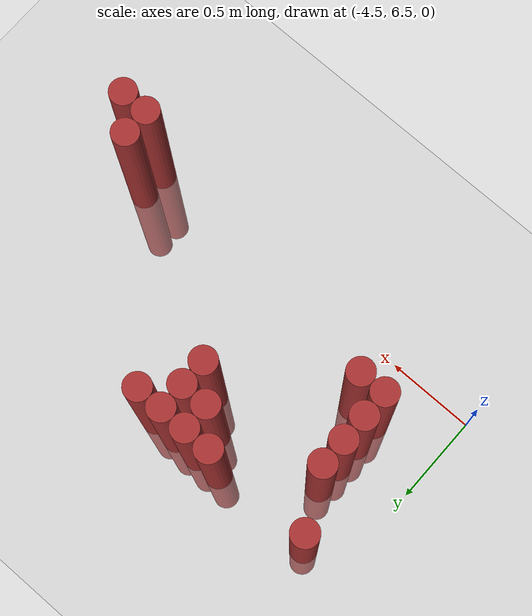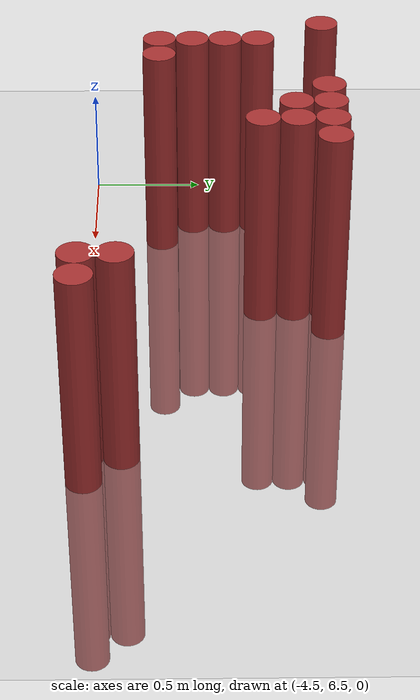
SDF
<sdf version="1.6">
 <world name="default">
  <model name="ground_plane">
   <static>1</static>
   <link name="link">
    <collision name="collision">
     <geometry><plane><normal>0 0 1</normal><size>100 100</size></plane></geometry>
     <surface><friction><ode><mu>100</mu><mu2>50</mu2></ode></friction></surface>
    </collision>
    <visual name="visual">
     <cast_shadows>0</cast_shadows>
     <geometry><plane><normal>0 0 1</normal><size>100 100</size></plane></geometry>
     <material>
      <script><uri>file://media/materials/scripts/gazebo.material</uri><name>Gazebo/Grey</name></script>
     </material>
    </visual>
   </link>
  </model>
  <model name="unit_cylinder_132">
   <static>1</static>
   <pose>-4.275000 7.575000 0.000000 0.000000 0.000000 0.000000</pose>
   <link name="link">
    <inertial>
     <mass>1</mass>
     <inertia><ixx>0.145833</ixx><ixy>0</ixy><ixz>0</ixz><iyy>0.145833</iyy><iyz>0</iyz><izz>0.125</izz></inertia>
    </inertial>
    <collision name="collision">
     <geometry><cylinder><radius>0.075000</radius><length>2</length></cylinder></geometry>
    </collision>
    <visual name="visual">
     <geometry><cylinder><radius>0.075000</radius><length>2</length></cylinder></geometry>
     <material>
      <ambient>0.648000 0.192000 0.192000 1</ambient>
      <diffuse>0.648000 0.192000 0.192000 1</diffuse>
     </material>
     <material>
      <script><name>Gazebo/Grey</name><uri>file://media/materials/scripts/gazebo.material</uri></script>
     </material>
    </visual>
   </link>
  </model>
  <model name="unit_cylinder_139">
   <static>1</static>
   <pose>-4.125000 6.825000 0.000000 0.000000 0.000000 0.000000</pose>
   <link name="link">
    <inertial>
     <mass>1</mass>
     <inertia><ixx>0.145833</ixx><ixy>0</ixy><ixz>0</ixz><iyy>0.145833</iyy><iyz>0</iyz><izz>0.125</izz></inertia>
    </inertial>
    <collision name="collision">
     <geometry><cylinder><radius>0.075000</radius><length>2</length></cylinder></geometry>
    </collision>
    <visual name="visual">
     <geometry><cylinder><radius>0.075000</radius><length>2</length></cylinder></geometry>
     <material>
      <ambient>0.648000 0.192000 0.192000 1</ambient>
      <diffuse>0.648000 0.192000 0.192000 1</diffuse>
     </material>
     <material>
      <script><name>Gazebo/Grey</name><uri>file://media/materials/scripts/gazebo.material</uri></script>
     </material>
    </visual>
   </link>
  </model>
  <model name="unit_cylinder_140">
   <static>1</static>
   <pose>-4.125000 6.975000 0.000000 0.000000 0.000000 0.000000</pose>
   <link name="link">
    <inertial>
     <mass>1</mass>
     <inertia><ixx>0.145833</ixx><ixy>0</ixy><ixz>0</ixz><iyy>0.145833</iyy><iyz>0</iyz><izz>0.125</izz></inertia>
    </inertial>
    <collision name="collision">
     <geometry><cylinder><radius>0.075000</radius><length>2</length></cylinder></geometry>
    </collision>
    <visual name="visual">
     <geometry><cylinder><radius>0.075000</radius><length>2</length></cylinder></geometry>
     <material>
      <ambient>0.648000 0.192000 0.192000 1</ambient>
      <diffuse>0.648000 0.192000 0.192000 1</diffuse>
     </material>
     <material>
      <script><name>Gazebo/Grey</name><uri>file://media/materials/scripts/gazebo.material</uri></script>
     </material>
    </visual>
   </link>
  </model>
  <model name="unit_cylinder_141">
   <static>1</static>
   <pose>-4.125000 7.125000 0.000000 0.000000 0.000000 0.000000</pose>
   <link name="link">
    <inertial>
     <mass>1</mass>
     <inertia><ixx>0.145833</ixx><ixy>0</ixy><ixz>0</ixz><iyy>0.145833</iyy><iyz>0</iyz><izz>0.125</izz></inertia>
    </inertial>
    <collision name="collision">
     <geometry><cylinder><radius>0.075000</radius><length>2</length></cylinder></geometry>
    </collision>
    <visual name="visual">
     <geometry><cylinder><radius>0.075000</radius><length>2</length></cylinder></geometry>
     <material>
      <ambient>0.648000 0.192000 0.192000 1</ambient>
      <diffuse>0.648000 0.192000 0.192000 1</diffuse>
     </material>
     <material>
      <script><name>Gazebo/Grey</name><uri>file://media/materials/scripts/gazebo.material</uri></script>
     </material>
    </visual>
   </link>
  </model>
  <model name="unit_cylinder_142">
   <static>1</static>
   <pose>-4.125000 7.275000 0.000000 0.000000 0.000000 0.000000</pose>
   <link name="link">
    <inertial>
     <mass>1</mass>
     <inertia><ixx>0.145833</ixx><ixy>0</ixy><ixz>0</ixz><iyy>0.145833</iyy><iyz>0</iyz><izz>0.125</izz></inertia>
    </inertial>
    <collision name="collision">
     <geometry><cylinder><radius>0.075000</radius><length>2</length></cylinder></geometry>
    </collision>
    <visual name="visual">
     <geometry><cylinder><radius>0.075000</radius><length>2</length></cylinder></geometry>
     <material>
      <ambient>0.648000 0.192000 0.192000 1</ambient>
      <diffuse>0.648000 0.192000 0.192000 1</diffuse>
     </material>
     <material>
      <script><name>Gazebo/Grey</name><uri>file://media/materials/scripts/gazebo.material</uri></script>
     </material>
    </visual>
   </link>
  </model>
  <model name="unit_cylinder_147">
   <static>1</static>
   <pose>-3.975000 6.825000 0.000000 0.000000 0.000000 0.000000</pose>
   <link name="link">
    <inertial>
     <mass>1</mass>
     <inertia><ixx>0.145833</ixx><ixy>0</ixy><ixz>0</ixz><iyy>0.145833</iyy><iyz>0</iyz><izz>0.125</izz></inertia>
    </inertial>
    <collision name="collision">
     <geometry><cylinder><radius>0.075000</radius><length>2</length></cylinder></geometry>
    </collision>
    <visual name="visual">
     <geometry><cylinder><radius>0.075000</radius><length>2</length></cylinder></geometry>
     <material>
      <ambient>0.648000 0.192000 0.192000 1</ambient>
      <diffuse>0.648000 0.192000 0.192000 1</diffuse>
     </material>
     <material>
      <script><name>Gazebo/Grey</name><uri>file://media/materials/scripts/gazebo.material</uri></script>
     </material>
    </visual>
   </link>
  </model>
  <model name="unit_cylinder_149">
   <static>1</static>
   <pose>-3.675000 7.575000 0.000000 0.000000 0.000000 0.000000</pose>
   <link name="link">
    <inertial>
     <mass>1</mass>
     <inertia><ixx>0.145833</ixx><ixy>0</ixy><ixz>0</ixz><iyy>0.145833</iyy><iyz>0</iyz><izz>0.125</izz></inertia>
    </inertial>
    <collision name="collision">
     <geometry><cylinder><radius>0.075000</radius><length>2</length></cylinder></geometry>
    </collision>
    <visual name="visual">
     <geometry><cylinder><radius>0.075000</radius><length>2</length></cylinder></geometry>
     <material>
      <ambient>0.648000 0.192000 0.192000 1</ambient>
      <diffuse>0.648000 0.192000 0.192000 1</diffuse>
     </material>
     <material>
      <script><name>Gazebo/Grey</name><uri>file://media/materials/scripts/gazebo.material</uri></script>
     </material>
    </visual>
   </link>
  </model>
  <model name="unit_cylinder_150">
   <static>1</static>
   <pose>-3.525000 7.425000 0.000000 0.000000 0.000000 0.000000</pose>
   <link name="link">
    <inertial>
     <mass>1</mass>
     <inertia><ixx>0.145833</ixx><ixy>0</ixy><ixz>0</ixz><iyy>0.145833</iyy><iyz>0</iyz><izz>0.125</izz></inertia>
    </inertial>
    <collision name="collision">
     <geometry><cylinder><radius>0.075000</radius><length>2</length></cylinder></geometry>
    </collision>
    <visual name="visual">
     <geometry><cylinder><radius>0.075000</radius><length>2</length></cylinder></geometry>
     <material>
      <ambient>0.648000 0.192000 0.192000 1</ambient>
      <diffuse>0.648000 0.192000 0.192000 1</diffuse>
     </material>
     <material>
      <script><name>Gazebo/Grey</name><uri>file://media/materials/scripts/gazebo.material</uri></script>
     </material>
    </visual>
   </link>
  </model>
  <model name="unit_cylinder_151">
   <static>1</static>
   <pose>-3.525000 7.575000 0.000000 0.000000 0.000000 0.000000</pose>
   <link name="link">
    <inertial>
     <mass>1</mass>
     <inertia><ixx>0.145833</ixx><ixy>0</ixy><ixz>0</ixz><iyy>0.145833</iyy><iyz>0</iyz><izz>0.125</izz></inertia>
    </inertial>
    <collision name="collision">
     <geometry><cylinder><radius>0.075000</radius><length>2</length></cylinder></geometry>
    </collision>
    <visual name="visual">
     <geometry><cylinder><radius>0.075000</radius><length>2</length></cylinder></geometry>
     <material>
      <ambient>0.648000 0.192000 0.192000 1</ambient>
      <diffuse>0.648000 0.192000 0.192000 1</diffuse>
     </material>
     <material>
      <script><name>Gazebo/Grey</name><uri>file://media/materials/scripts/gazebo.material</uri></script>
     </material>
    </visual>
   </link>
  </model>
  <model name="unit_cylinder_153">
   <static>1</static>
   <pose>-3.375000 7.275000 0.000000 0.000000 0.000000 0.000000</pose>
   <link name="link">
    <inertial>
     <mass>1</mass>
     <inertia><ixx>0.145833</ixx><ixy>0</ixy><ixz>0</ixz><iyy>0.145833</iyy><iyz>0</iyz><izz>0.125</izz></inertia>
    </inertial>
    <collision name="collision">
     <geometry><cylinder><radius>0.075000</radius><length>2</length></cylinder></geometry>
    </collision>
    <visual name="visual">
     <geometry><cylinder><radius>0.075000</radius><length>2</length></cylinder></geometry>
     <material>
      <ambient>0.648000 0.192000 0.192000 1</ambient>
      <diffuse>0.648000 0.192000 0.192000 1</diffuse>
     </material>
     <material>
      <script><name>Gazebo/Grey</name><uri>file://media/materials/scripts/gazebo.material</uri></script>
     </material>
    </visual>
   </link>
  </model>
  <model name="unit_cylinder_154">
   <static>1</static>
   <pose>-3.375000 7.425000 0.000000 0.000000 0.000000 0.000000</pose>
   <link name="link">
    <inertial>
     <mass>1</mass>
     <inertia><ixx>0.145833</ixx><ixy>0</ixy><ixz>0</ixz><iyy>0.145833</iyy><iyz>0</iyz><izz>0.125</izz></inertia>
    </inertial>
    <collision name="collision">
     <geometry><cylinder><radius>0.075000</radius><length>2</length></cylinder></geometry>
    </collision>
    <visual name="visual">
     <geometry><cylinder><radius>0.075000</radius><length>2</length></cylinder></geometry>
     <material>
      <ambient>0.648000 0.192000 0.192000 1</ambient>
      <diffuse>0.648000 0.192000 0.192000 1</diffuse>
     </material>
     <material>
      <script><name>Gazebo/Grey</name><uri>file://media/materials/scripts/gazebo.material</uri></script>
     </material>
    </visual>
   </link>
  </model>
  <model name="unit_cylinder_155">
   <static>1</static>
   <pose>-3.375000 7.575000 0.000000 0.000000 0.000000 0.000000</pose>
   <link name="link">
    <inertial>
     <mass>1</mass>
     <inertia><ixx>0.145833</ixx><ixy>0</ixy><ixz>0</ixz><iyy>0.145833</iyy><iyz>0</iyz><izz>0.125</izz></inertia>
    </inertial>
    <collision name="collision">
     <geometry><cylinder><radius>0.075000</radius><length>2</length></cylinder></geometry>
    </collision>
    <visual name="visual">
     <geometry><cylinder><radius>0.075000</radius><length>2</length></cylinder></geometry>
     <material>
      <ambient>0.648000 0.192000 0.192000 1</ambient>
      <diffuse>0.648000 0.192000 0.192000 1</diffuse>
     </material>
     <material>
      <script><name>Gazebo/Grey</name><uri>file://media/materials/scripts/gazebo.material</uri></script>
     </material>
    </visual>
   </link>
  </model>
  <model name="unit_cylinder_159">
   <static>1</static>
   <pose>-3.225000 7.575000 0.000000 0.000000 0.000000 0.000000</pose>
   <link name="link">
    <inertial>
     <mass>1</mass>
     <inertia><ixx>0.145833</ixx><ixy>0</ixy><ixz>0</ixz><iyy>0.145833</iyy><iyz>0</iyz><izz>0.125</izz></inertia>
    </inertial>
    <collision name="collision">
     <geometry><cylinder><radius>0.075000</radius><length>2</length></cylinder></geometry>
    </collision>
    <visual name="visual">
     <geometry><cylinder><radius>0.075000</radius><length>2</length></cylinder></geometry>
     <material>
      <ambient>0.648000 0.192000 0.192000 1</ambient>
      <diffuse>0.648000 0.192000 0.192000 1</diffuse>
     </material>
     <material>
      <script><name>Gazebo/Grey</name><uri>file://media/materials/scripts/gazebo.material</uri></script>
     </material>
    </visual>
   </link>
  </model>
  <model name="unit_cylinder_166">
   <static>1</static>
   <pose>-2.325000 6.525000 0.000000 0.000000 0.000000 0.000000</pose>
   <link name="link">
    <inertial>
     <mass>1</mass>
     <inertia><ixx>0.145833</ixx><ixy>0</ixy><ixz>0</ixz><iyy>0.145833</iyy><iyz>0</iyz><izz>0.125</izz></inertia>
    </inertial>
    <collision name="collision">
     <geometry><cylinder><radius>0.075000</radius><length>2</length></cylinder></geometry>
    </collision>
    <visual name="visual">
     <geometry><cylinder><radius>0.075000</radius><length>2</length></cylinder></geometry>
     <material>
      <ambient>0.648000 0.192000 0.192000 1</ambient>
      <diffuse>0.648000 0.192000 0.192000 1</diffuse>
     </material>
     <material>
      <script><name>Gazebo/Grey</name><uri>file://media/materials/scripts/gazebo.material</uri></script>
     </material>
    </visual>
   </link>
  </model>
  <model name="unit_cylinder_167">
   <static>1</static>
   <pose>-2.325000 6.675000 0.000000 0.000000 0.000000 0.000000</pose>
   <link name="link">
    <inertial>
     <mass>1</mass>
     <inertia><ixx>0.145833</ixx><ixy>0</ixy><ixz>0</ixz><iyy>0.145833</iyy><iyz>0</iyz><izz>0.125</izz></inertia>
    </inertial>
    <collision name="collision">
     <geometry><cylinder><radius>0.075000</radius><length>2</length></cylinder></geometry>
    </collision>
    <visual name="visual">
     <geometry><cylinder><radius>0.075000</radius><length>2</length></cylinder></geometry>
     <material>
      <ambient>0.648000 0.192000 0.192000 1</ambient>
      <diffuse>0.648000 0.192000 0.192000 1</diffuse>
     </material>
     <material>
      <script><name>Gazebo/Grey</name><uri>file://media/materials/scripts/gazebo.material</uri></script>
     </material>
    </visual>
   </link>
  </model>
  <model name="unit_cylinder_168">
   <static>1</static>
   <pose>-2.175000 6.525000 0.000000 0.000000 0.000000 0.000000</pose>
   <link name="link">
    <inertial>
     <mass>1</mass>
     <inertia><ixx>0.145833</ixx><ixy>0</ixy><ixz>0</ixz><iyy>0.145833</iyy><iyz>0</iyz><izz>0.125</izz></inertia>
    </inertial>
    <collision name="collision">
     <geometry><cylinder><radius>0.075000</radius><length>2</length></cylinder></geometry>
    </collision>
    <visual name="visual">
     <geometry><cylinder><radius>0.075000</radius><length>2</length></cylinder></geometry>
     <material>
      <ambient>0.648000 0.192000 0.192000 1</ambient>
      <diffuse>0.648000 0.192000 0.192000 1</diffuse>
     </material>
     <material>
      <script><name>Gazebo/Grey</name><uri>file://media/materials/scripts/gazebo.material</uri></script>
     </material>
    </visual>
   </link>
  </model>
 </world>
</sdf>
